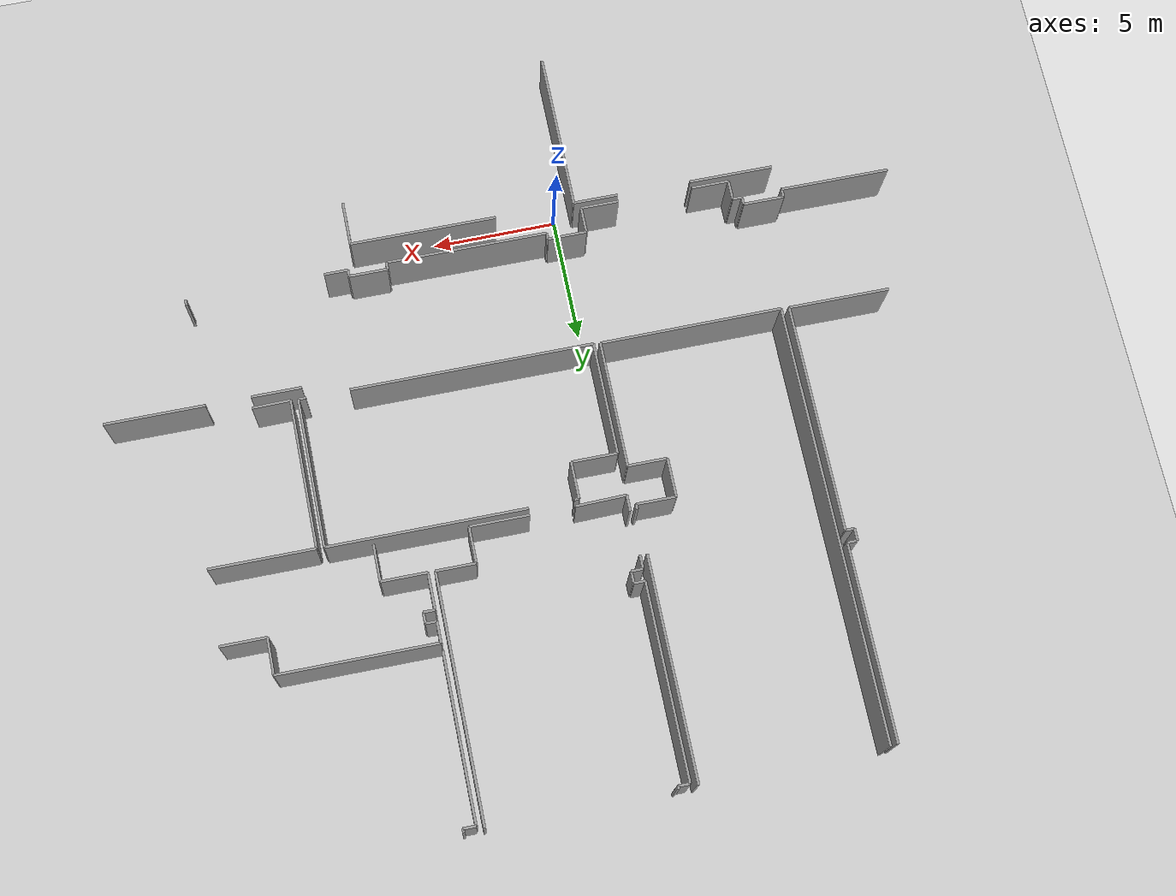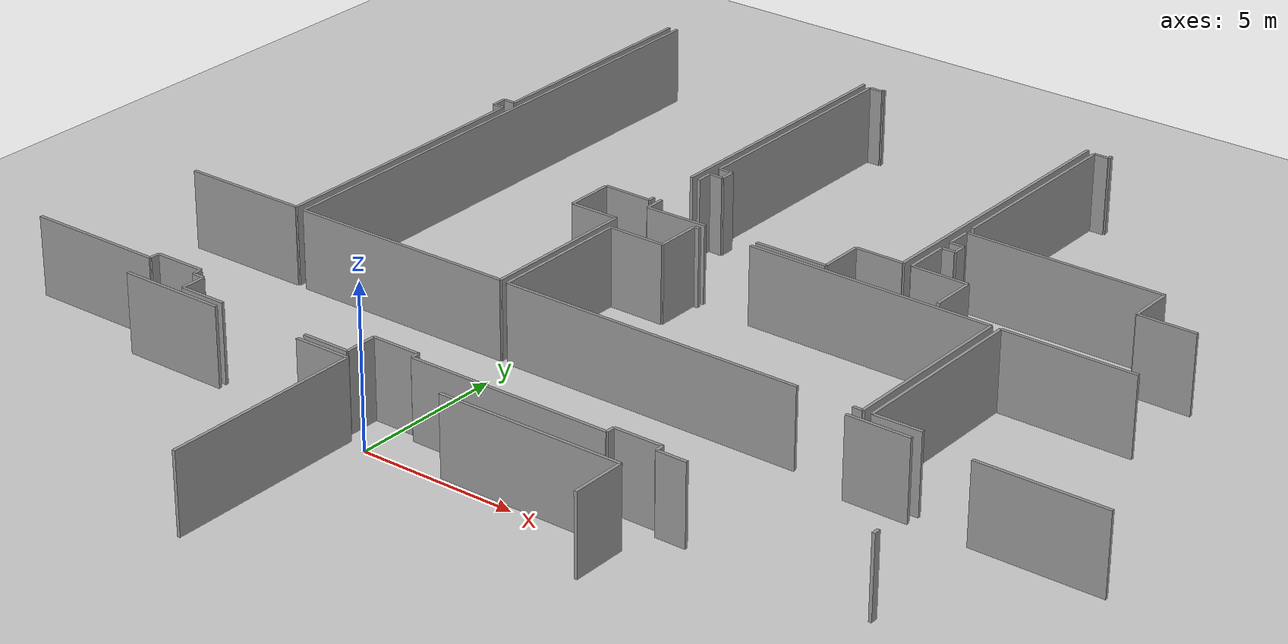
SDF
<sdf version="1.6">
 <world name="default">
  <model name="ground_plane">
   <static>1</static>
   <link name="link">
    <collision name="collision">
     <geometry><plane><normal>0 0 1</normal><size>100 100</size></plane></geometry>
     <surface><friction><ode><mu>100</mu><mu2>50</mu2></ode></friction></surface>
    </collision>
    <visual name="visual">
     <cast_shadows>0</cast_shadows>
     <geometry><plane><normal>0 0 1</normal><size>100 100</size></plane></geometry>
     <material>
      <script><uri>file://media/materials/scripts/gazebo.material</uri><name>Gazebo/Grey</name></script>
     </material>
    </visual>
   </link>
  </model>
  <model name="50057022">
   <static>1</static>
   <link name="Wall_30">
    <collision name="Wall_30_Collision">
     <geometry><box><size>7.83178337604 0.1 2.5</size></box></geometry>
     <pose>3.91589168802 0 1.25 0 0 0</pose>
    </collision>
    <visual name="Wall_30_Visual">
     <pose>3.91589168802 0 1.25 0 0 0</pose>
     <geometry><box><size>7.83178337604 0.1 2.5</size></box></geometry>
     <material>
      <script><uri>file://media/materials/scripts/gazebo.material</uri><name>Gazebo/Grey</name></script>
      <ambient>1 1 1 1</ambient>
     </material>
    </visual>
    <pose>48.4105016894 -0.0653947638565 0 0 0 -1.57079632679</pose>
   </link>
   <link name="Wall_31">
    <collision name="Wall_31_Collision">
     <geometry><box><size>0.394016125639 0.1 2.5</size></box></geometry>
     <pose>0.19700806282 0 1.25 0 0 0</pose>
    </collision>
    <visual name="Wall_31_Visual">
     <pose>0.19700806282 0 1.25 0 0 0</pose>
     <geometry><box><size>0.394016125639 0.1 2.5</size></box></geometry>
     <material>
      <script><uri>file://media/materials/scripts/gazebo.material</uri><name>Gazebo/Grey</name></script>
      <ambient>1 1 1 1</ambient>
     </material>
    </visual>
    <pose>48.4105016894 -7.8971781399 0 0 0 3.14159265359</pose>
   </link>
   <link name="Wall_32">
    <collision name="Wall_32_Collision">
     <geometry><box><size>0.48323688873 0.1 2.5</size></box></geometry>
     <pose>0.241618444365 0 1.25 0 0 0</pose>
    </collision>
    <visual name="Wall_32_Visual">
     <pose>0.241618444365 0 1.25 0 0 0</pose>
     <geometry><box><size>0.48323688873 0.1 2.5</size></box></geometry>
     <material>
      <script><uri>file://media/materials/scripts/gazebo.material</uri><name>Gazebo/Grey</name></script>
      <ambient>1 1 1 1</ambient>
     </material>
    </visual>
    <pose>48.0164855637 -7.8971781399 0 0 0 -1.57079632679</pose>
   </link>
   <link name="Wall_33">
    <collision name="Wall_33_Collision">
     <geometry><box><size>0.358403860826 0.1 2.5</size></box></geometry>
     <pose>0.179201930413 0 1.25 0 0 0</pose>
    </collision>
    <visual name="Wall_33_Visual">
     <pose>0.179201930413 0 1.25 0 0 0</pose>
     <geometry><box><size>0.358403860826 0.1 2.5</size></box></geometry>
     <material>
      <script><uri>file://media/materials/scripts/gazebo.material</uri><name>Gazebo/Grey</name></script>
      <ambient>1 1 1 1</ambient>
     </material>
    </visual>
    <pose>48.0164855637 -8.38041502863 0 0 0 0.0</pose>
   </link>
   <link name="Wall_34">
    <collision name="Wall_34_Collision">
     <geometry><box><size>9.22991328857 0.1 2.5</size></box></geometry>
     <pose>4.61495664429 0 1.25 0 0 0</pose>
    </collision>
    <visual name="Wall_34_Visual">
     <pose>4.61495664429 0 1.25 0 0 0</pose>
     <geometry><box><size>9.22991328857 0.1 2.5</size></box></geometry>
     <material>
      <script><uri>file://media/materials/scripts/gazebo.material</uri><name>Gazebo/Grey</name></script>
      <ambient>1 1 1 1</ambient>
     </material>
    </visual>
    <pose>48.3748894246 -8.38041502863 0 0 0 -1.57079632679</pose>
   </link>
   <link name="Wall_35">
    <collision name="Wall_35_Collision">
     <geometry><box><size>4.04649111468 0.1 2.5</size></box></geometry>
     <pose>2.02324555734 0 1.25 0 0 0</pose>
    </collision>
    <visual name="Wall_35_Visual">
     <pose>2.02324555734 0 1.25 0 0 0</pose>
     <geometry><box><size>4.04649111468 0.1 2.5</size></box></geometry>
     <material>
      <script><uri>file://media/materials/scripts/gazebo.material</uri><name>Gazebo/Grey</name></script>
      <ambient>1 1 1 1</ambient>
     </material>
    </visual>
    <pose>48.3748894246 -17.6103283172 0 0 0 3.14159265359</pose>
   </link>
   <link name="Wall_43">
    <collision name="Wall_43_Collision">
     <geometry><box><size>17.6012034664 0.1 2.5</size></box></geometry>
     <pose>8.80060173321 0 1.25 0 0 0</pose>
    </collision>
    <visual name="Wall_43_Visual">
     <pose>8.80060173321 0 1.25 0 0 0</pose>
     <geometry><box><size>17.6012034664 0.1 2.5</size></box></geometry>
     <material>
      <script><uri>file://media/materials/scripts/gazebo.material</uri><name>Gazebo/Grey</name></script>
      <ambient>1 1 1 1</ambient>
     </material>
    </visual>
    <pose>48.6986948929 -17.6303522953 0 0 0 1.57079632679</pose>
   </link>
   <link name="Wall_44">
    <collision name="Wall_44_Collision">
     <geometry><box><size>8.89989785236 0.1 2.5</size></box></geometry>
     <pose>4.44994892618 0 1.25 0 0 0</pose>
    </collision>
    <visual name="Wall_44_Visual">
     <pose>4.44994892618 0 1.25 0 0 0</pose>
     <geometry><box><size>8.89989785236 0.1 2.5</size></box></geometry>
     <material>
      <script><uri>file://media/materials/scripts/gazebo.material</uri><name>Gazebo/Grey</name></script>
      <ambient>1 1 1 1</ambient>
     </material>
    </visual>
    <pose>56.0094746367 -0.0291488288508 0 0 0 -1.57079632679</pose>
   </link>
   <link name="Wall_45">
    <collision name="Wall_45_Collision">
     <geometry><box><size>0.204041801955 0.1 2.5</size></box></geometry>
     <pose>0.102020900978 0 1.25 0 0 0</pose>
    </collision>
    <visual name="Wall_45_Visual">
     <pose>0.102020900978 0 1.25 0 0 0</pose>
     <geometry><box><size>0.204041801955 0.1 2.5</size></box></geometry>
     <material>
      <script><uri>file://media/materials/scripts/gazebo.material</uri><name>Gazebo/Grey</name></script>
      <ambient>1 1 1 1</ambient>
     </material>
    </visual>
    <pose>56.0094746367 -10.7267690171 0 0 0 -1.57079632679</pose>
   </link>
   <link name="Wall_46">
    <collision name="Wall_46_Collision">
     <geometry><box><size>1.57403675794 0.1 2.5</size></box></geometry>
     <pose>0.78701837897 0 1.25 0 0 0</pose>
    </collision>
    <visual name="Wall_46_Visual">
     <pose>0.78701837897 0 1.25 0 0 0</pose>
     <geometry><box><size>1.57403675794 0.1 2.5</size></box></geometry>
     <material>
      <script><uri>file://media/materials/scripts/gazebo.material</uri><name>Gazebo/Grey</name></script>
      <ambient>1 1 1 1</ambient>
     </material>
    </visual>
    <pose>56.0094746367 -10.930810819 0 0 0 3.14159265359</pose>
   </link>
   <link name="Wall_47">
    <collision name="Wall_47_Collision">
     <geometry><box><size>1.55946234352 0.1 2.5</size></box></geometry>
     <pose>0.779731171758 0 1.25 0 0 0</pose>
    </collision>
    <visual name="Wall_47_Visual">
     <pose>0.779731171758 0 1.25 0 0 0</pose>
     <geometry><box><size>1.55946234352 0.1 2.5</size></box></geometry>
     <material>
      <script><uri>file://media/materials/scripts/gazebo.material</uri><name>Gazebo/Grey</name></script>
      <ambient>1 1 1 1</ambient>
     </material>
    </visual>
    <pose>54.4354378788 -10.930810819 0 0 0 -1.57079632679</pose>
   </link>
   <link name="Wall_48">
    <collision name="Wall_48_Collision">
     <geometry><box><size>1.57403675794 0.1 2.5</size></box></geometry>
     <pose>0.78701837897 0 1.25 0 0 0</pose>
    </collision>
    <visual name="Wall_48_Visual">
     <pose>0.78701837897 0 1.25 0 0 0</pose>
     <geometry><box><size>1.57403675794 0.1 2.5</size></box></geometry>
     <material>
      <script><uri>file://media/materials/scripts/gazebo.material</uri><name>Gazebo/Grey</name></script>
      <ambient>1 1 1 1</ambient>
     </material>
    </visual>
    <pose>54.4354378788 -12.4902731625 0 0 0 0.0</pose>
   </link>
   <link name="Wall_49">
    <collision name="Wall_49_Collision">
     <geometry><box><size>5.10738175081 0.1 2.5</size></box></geometry>
     <pose>2.5536908754 0 1.25 0 0 0</pose>
    </collision>
    <visual name="Wall_49_Visual">
     <pose>2.5536908754 0 1.25 0 0 0</pose>
     <geometry><box><size>5.10738175081 0.1 2.5</size></box></geometry>
     <material>
      <script><uri>file://media/materials/scripts/gazebo.material</uri><name>Gazebo/Grey</name></script>
      <ambient>1 1 1 1</ambient>
     </material>
    </visual>
    <pose>56.0094746367 -12.4902731625 0 0 0 -1.57079632679</pose>
   </link>
   <link name="Wall_50">
    <collision name="Wall_50_Collision">
     <geometry><box><size>7.31085286282 0.1 2.5</size></box></geometry>
     <pose>3.65542643141 0 1.25 0 0 0</pose>
    </collision>
    <visual name="Wall_50_Visual">
     <pose>3.65542643141 0 1.25 0 0 0</pose>
     <geometry><box><size>7.31085286282 0.1 2.5</size></box></geometry>
     <material>
      <script><uri>file://media/materials/scripts/gazebo.material</uri><name>Gazebo/Grey</name></script>
      <ambient>1 1 1 1</ambient>
     </material>
    </visual>
    <pose>56.0094746367 -17.5976549134 0 0 0 -3.13712019442</pose>
   </link>
   <link name="Wall_51">
    <collision name="Wall_51_Collision">
     <geometry><box><size>0.641274234717 0.1 2.5</size></box></geometry>
     <pose>0.320637117358 0 1.25 0 0 0</pose>
    </collision>
    <visual name="Wall_51_Visual">
     <pose>0.320637117358 0 1.25 0 0 0</pose>
     <geometry><box><size>0.641274234717 0.1 2.5</size></box></geometry>
     <material>
      <script><uri>file://media/materials/scripts/gazebo.material</uri><name>Gazebo/Grey</name></script>
      <ambient>1 1 1 1</ambient>
     </material>
    </visual>
    <pose>56.2863885108 -11.3534688374 0 0 0 1.57079632679</pose>
   </link>
   <link name="Wall_52">
    <collision name="Wall_52_Collision">
     <geometry><box><size>0.55002572701 0.1 2.5</size></box></geometry>
     <pose>0.275012863505 0 1.25 0 0 0</pose>
    </collision>
    <visual name="Wall_52_Visual">
     <pose>0.275012863505 0 1.25 0 0 0</pose>
     <geometry><box><size>0.55002572701 0.1 2.5</size></box></geometry>
     <material>
      <script><uri>file://media/materials/scripts/gazebo.material</uri><name>Gazebo/Grey</name></script>
      <ambient>1 1 1 1</ambient>
     </material>
    </visual>
    <pose>56.2863885108 -8.94716964872 0 0 0 1.57079632679</pose>
   </link>
   <link name="Wall_53">
    <collision name="Wall_53_Collision">
     <geometry><box><size>0.463086176611 0.1 2.5</size></box></geometry>
     <pose>0.231543088306 0 1.25 0 0 0</pose>
    </collision>
    <visual name="Wall_53_Visual">
     <pose>0.231543088306 0 1.25 0 0 0</pose>
     <geometry><box><size>0.463086176611 0.1 2.5</size></box></geometry>
     <material>
      <script><uri>file://media/materials/scripts/gazebo.material</uri><name>Gazebo/Grey</name></script>
      <ambient>1 1 1 1</ambient>
     </material>
    </visual>
    <pose>56.2863885108 -8.39714392171 0 0 0 0.0</pose>
   </link>
   <link name="Wall_54">
    <collision name="Wall_54_Collision">
     <geometry><box><size>0.474999176229 0.1 2.5</size></box></geometry>
     <pose>0.237499588114 0 1.25 0 0 0</pose>
    </collision>
    <visual name="Wall_54_Visual">
     <pose>0.237499588114 0 1.25 0 0 0</pose>
     <geometry><box><size>0.474999176229 0.1 2.5</size></box></geometry>
     <material>
      <script><uri>file://media/materials/scripts/gazebo.material</uri><name>Gazebo/Grey</name></script>
      <ambient>1 1 1 1</ambient>
     </material>
    </visual>
    <pose>56.7494746874 -8.39714392171 0 0 0 1.57079632679</pose>
   </link>
   <link name="Wall_55">
    <collision name="Wall_55_Collision">
     <geometry><box><size>0.450032570648 0.1 2.5</size></box></geometry>
     <pose>0.225016285324 0 1.25 0 0 0</pose>
    </collision>
    <visual name="Wall_55_Visual">
     <pose>0.225016285324 0 1.25 0 0 0</pose>
     <geometry><box><size>0.450032570648 0.1 2.5</size></box></geometry>
     <material>
      <script><uri>file://media/materials/scripts/gazebo.material</uri><name>Gazebo/Grey</name></script>
      <ambient>1 1 1 1</ambient>
     </material>
    </visual>
    <pose>56.7494746874 -7.92214474548 0 0 0 3.14159265359</pose>
   </link>
   <link name="Wall_56">
    <collision name="Wall_56_Collision">
     <geometry><box><size>7.78299077123 0.1 2.5</size></box></geometry>
     <pose>3.89149538561 0 1.25 0 0 0</pose>
    </collision>
    <visual name="Wall_56_Visual">
     <pose>3.89149538561 0 1.25 0 0 0</pose>
     <geometry><box><size>7.78299077123 0.1 2.5</size></box></geometry>
     <material>
      <script><uri>file://media/materials/scripts/gazebo.material</uri><name>Gazebo/Grey</name></script>
      <ambient>1 1 1 1</ambient>
     </material>
    </visual>
    <pose>56.2994421168 -7.92214474548 0 0 0 1.57079632679</pose>
   </link>
   <link name="Wall_57">
    <collision name="Wall_57_Collision">
     <geometry><box><size>0.462959442573 0.1 2.5</size></box></geometry>
     <pose>0.231479721287 0 1.25 0 0 0</pose>
    </collision>
    <visual name="Wall_57_Visual">
     <pose>0.231479721287 0 1.25 0 0 0</pose>
     <geometry><box><size>0.462959442573 0.1 2.5</size></box></geometry>
     <material>
      <script><uri>file://media/materials/scripts/gazebo.material</uri><name>Gazebo/Grey</name></script>
      <ambient>1 1 1 1</ambient>
     </material>
    </visual>
    <pose>56.2994421168 -0.139153974253 0 0 0 0.0</pose>
   </link>
   <link name="Wall_58">
    <collision name="Wall_58_Collision">
     <geometry><box><size>0.114947772903 0.1 2.5</size></box></geometry>
     <pose>0.0574738864514 0 1.25 0 0 0</pose>
    </collision>
    <visual name="Wall_58_Visual">
     <pose>0.0574738864514 0 1.25 0 0 0</pose>
     <geometry><box><size>0.114947772903 0.1 2.5</size></box></geometry>
     <material>
      <script><uri>file://media/materials/scripts/gazebo.material</uri><name>Gazebo/Grey</name></script>
      <ambient>1 1 1 1</ambient>
     </material>
    </visual>
    <pose>56.7624015593 -0.139153974253 0 0 0 1.57079632679</pose>
   </link>
   <link name="Wall_59">
    <collision name="Wall_59_Collision">
     <geometry><box><size>9.81618495059 0.1 2.5</size></box></geometry>
     <pose>4.90809247529 0 1.25 0 0 0</pose>
    </collision>
    <visual name="Wall_59_Visual">
     <pose>4.90809247529 0 1.25 0 0 0</pose>
     <geometry><box><size>9.81618495059 0.1 2.5</size></box></geometry>
     <material>
      <script><uri>file://media/materials/scripts/gazebo.material</uri><name>Gazebo/Grey</name></script>
      <ambient>1 1 1 1</ambient>
     </material>
    </visual>
    <pose>64.0549316016 -0.02420620135 0 0 0 -1.57079632679</pose>
   </link>
   <link name="Wall_60">
    <collision name="Wall_60_Collision">
     <geometry><box><size>1.58202100236 0.1 2.5</size></box></geometry>
     <pose>0.791010501182 0 1.25 0 0 0</pose>
    </collision>
    <visual name="Wall_60_Visual">
     <pose>0.791010501182 0 1.25 0 0 0</pose>
     <geometry><box><size>1.58202100236 0.1 2.5</size></box></geometry>
     <material>
      <script><uri>file://media/materials/scripts/gazebo.material</uri><name>Gazebo/Grey</name></script>
      <ambient>1 1 1 1</ambient>
     </material>
    </visual>
    <pose>64.0549316016 -9.84039115194 0 0 0 3.14159265359</pose>
   </link>
   <link name="Wall_61">
    <collision name="Wall_61_Collision">
     <geometry><box><size>1.46580588908 0.1 2.5</size></box></geometry>
     <pose>0.732902944539 0 1.25 0 0 0</pose>
    </collision>
    <visual name="Wall_61_Visual">
     <pose>0.732902944539 0 1.25 0 0 0</pose>
     <geometry><box><size>1.46580588908 0.1 2.5</size></box></geometry>
     <material>
      <script><uri>file://media/materials/scripts/gazebo.material</uri><name>Gazebo/Grey</name></script>
      <ambient>1 1 1 1</ambient>
     </material>
    </visual>
    <pose>62.4729105993 -9.84039115194 0 0 0 -1.57079632679</pose>
   </link>
   <link name="Wall_62">
    <collision name="Wall_62_Collision">
     <geometry><box><size>2.36941958345 0.1 2.5</size></box></geometry>
     <pose>1.18470979173 0 1.25 0 0 0</pose>
    </collision>
    <visual name="Wall_62_Visual">
     <pose>1.18470979173 0 1.25 0 0 0</pose>
     <geometry><box><size>2.36941958345 0.1 2.5</size></box></geometry>
     <material>
      <script><uri>file://media/materials/scripts/gazebo.material</uri><name>Gazebo/Grey</name></script>
      <ambient>1 1 1 1</ambient>
     </material>
    </visual>
    <pose>62.4729105993 -11.306197041 0 0 0 3.14159265359</pose>
   </link>
   <link name="Wall_63">
    <collision name="Wall_63_Collision">
     <geometry><box><size>2.02196057742 0.1 2.5</size></box></geometry>
     <pose>1.01098028871 0 1.25 0 0 0</pose>
    </collision>
    <visual name="Wall_63_Visual">
     <pose>1.01098028871 0 1.25 0 0 0</pose>
     <geometry><box><size>2.02196057742 0.1 2.5</size></box></geometry>
     <material>
      <script><uri>file://media/materials/scripts/gazebo.material</uri><name>Gazebo/Grey</name></script>
      <ambient>1 1 1 1</ambient>
     </material>
    </visual>
    <pose>58.3077964246 -11.306197041 0 0 0 -3.11821133533</pose>
   </link>
   <link name="Wall_64">
    <collision name="Wall_64_Collision">
     <geometry><box><size>6.61678414912 0.1 2.5</size></box></geometry>
     <pose>3.30839207456 0 1.25 0 0 0</pose>
    </collision>
    <visual name="Wall_64_Visual">
     <pose>3.30839207456 0 1.25 0 0 0</pose>
     <geometry><box><size>6.61678414912 0.1 2.5</size></box></geometry>
     <material>
      <script><uri>file://media/materials/scripts/gazebo.material</uri><name>Gazebo/Grey</name></script>
      <ambient>1 1 1 1</ambient>
     </material>
    </visual>
    <pose>64.346039688 -6.76252829337 0 0 0 1.57079632679</pose>
   </link>
   <link name="Wall_65">
    <collision name="Wall_65_Collision">
     <geometry><box><size>0.495530090463 0.1 2.5</size></box></geometry>
     <pose>0.247765045231 0 1.25 0 0 0</pose>
    </collision>
    <visual name="Wall_65_Visual">
     <pose>0.247765045231 0 1.25 0 0 0</pose>
     <geometry><box><size>0.495530090463 0.1 2.5</size></box></geometry>
     <material>
      <script><uri>file://media/materials/scripts/gazebo.material</uri><name>Gazebo/Grey</name></script>
      <ambient>1 1 1 1</ambient>
     </material>
    </visual>
    <pose>64.346039688 -0.145744144254 0 0 0 0.0</pose>
   </link>
   <link name="Wall_66">
    <collision name="Wall_66_Collision">
     <geometry><box><size>0.145744144254 0.1 2.5</size></box></geometry>
     <pose>0.0728720721269 0 1.25 0 0 0</pose>
    </collision>
    <visual name="Wall_66_Visual">
     <pose>0.0728720721269 0 1.25 0 0 0</pose>
     <geometry><box><size>0.145744144254 0.1 2.5</size></box></geometry>
     <material>
      <script><uri>file://media/materials/scripts/gazebo.material</uri><name>Gazebo/Grey</name></script>
      <ambient>1 1 1 1</ambient>
     </material>
    </visual>
    <pose>64.8415697785 -0.145744144254 0 0 0 1.57079632679</pose>
   </link>
   <link name="Wall_72">
    <collision name="Wall_72_Collision">
     <geometry><box><size>1.48773087773 0.1 2.5</size></box></geometry>
     <pose>0.743865438867 0 1.25 0 0 0</pose>
    </collision>
    <visual name="Wall_72_Visual">
     <pose>0.743865438867 0 1.25 0 0 0</pose>
     <geometry><box><size>1.48773087773 0.1 2.5</size></box></geometry>
     <material>
      <script><uri>file://media/materials/scripts/gazebo.material</uri><name>Gazebo/Grey</name></script>
      <ambient>1 1 1 1</ambient>
     </material>
    </visual>
    <pose>66.1867248629 -11.3281220297 0 0 0 1.57079632679</pose>
   </link>
   <link name="Wall_73">
    <collision name="Wall_73_Collision">
     <geometry><box><size>1.84043170683 0.1 2.5</size></box></geometry>
     <pose>0.920215853414 0 1.25 0 0 0</pose>
    </collision>
    <visual name="Wall_73_Visual">
     <pose>0.920215853414 0 1.25 0 0 0</pose>
     <geometry><box><size>1.84043170683 0.1 2.5</size></box></geometry>
     <material>
      <script><uri>file://media/materials/scripts/gazebo.material</uri><name>Gazebo/Grey</name></script>
      <ambient>1 1 1 1</ambient>
     </material>
    </visual>
    <pose>66.1867248629 -9.84039115194 0 0 0 3.14159265359</pose>
   </link>
   <link name="Wall_74">
    <collision name="Wall_74_Collision">
     <geometry><box><size>1.47670501639 0.1 2.5</size></box></geometry>
     <pose>0.738352508193 0 1.25 0 0 0</pose>
    </collision>
    <visual name="Wall_74_Visual">
     <pose>0.738352508193 0 1.25 0 0 0</pose>
     <geometry><box><size>1.47670501639 0.1 2.5</size></box></geometry>
     <material>
      <script><uri>file://media/materials/scripts/gazebo.material</uri><name>Gazebo/Grey</name></script>
      <ambient>1 1 1 1</ambient>
     </material>
    </visual>
    <pose>64.3462931561 -9.84039115194 0 0 0 1.57079632679</pose>
   </link>
   <link name="Wall_75">
    <collision name="Wall_75_Collision">
     <geometry><box><size>0.451806847187 0.1 2.5</size></box></geometry>
     <pose>0.225903423593 0 1.25 0 0 0</pose>
    </collision>
    <visual name="Wall_75_Visual">
     <pose>0.225903423593 0 1.25 0 0 0</pose>
     <geometry><box><size>0.451806847187 0.1 2.5</size></box></geometry>
     <material>
      <script><uri>file://media/materials/scripts/gazebo.material</uri><name>Gazebo/Grey</name></script>
      <ambient>1 1 1 1</ambient>
     </material>
    </visual>
    <pose>64.3462931561 -8.36368613555 0 0 0 0.0</pose>
   </link>
   <link name="Wall_76">
    <collision name="Wall_76_Collision">
     <geometry><box><size>0.440780985839 0.1 2.5</size></box></geometry>
     <pose>0.220390492919 0 1.25 0 0 0</pose>
    </collision>
    <visual name="Wall_76_Visual">
     <pose>0.220390492919 0 1.25 0 0 0</pose>
     <geometry><box><size>0.440780985839 0.1 2.5</size></box></geometry>
     <material>
      <script><uri>file://media/materials/scripts/gazebo.material</uri><name>Gazebo/Grey</name></script>
      <ambient>1 1 1 1</ambient>
     </material>
    </visual>
    <pose>64.7981000033 -8.36368613555 0 0 0 1.57079632679</pose>
   </link>
   <link name="Wall_77">
    <collision name="Wall_77_Collision">
     <geometry><box><size>0.440780985839 0.1 2.5</size></box></geometry>
     <pose>0.220390492919 0 1.25 0 0 0</pose>
    </collision>
    <visual name="Wall_77_Visual">
     <pose>0.220390492919 0 1.25 0 0 0</pose>
     <geometry><box><size>0.440780985839 0.1 2.5</size></box></geometry>
     <material>
      <script><uri>file://media/materials/scripts/gazebo.material</uri><name>Gazebo/Grey</name></script>
      <ambient>1 1 1 1</ambient>
     </material>
    </visual>
    <pose>64.7981000033 -7.92290514971 0 0 0 3.14159265359</pose>
   </link>
   <link name="Wall_78">
    <collision name="Wall_78_Collision">
     <geometry><box><size>0.837585260324 0.1 2.5</size></box></geometry>
     <pose>0.418792630162 0 1.25 0 0 0</pose>
    </collision>
    <visual name="Wall_78_Visual">
     <pose>0.418792630162 0 1.25 0 0 0</pose>
     <geometry><box><size>0.837585260324 0.1 2.5</size></box></geometry>
     <material>
      <script><uri>file://media/materials/scripts/gazebo.material</uri><name>Gazebo/Grey</name></script>
      <ambient>1 1 1 1</ambient>
     </material>
    </visual>
    <pose>64.3573190175 -7.92290514971 0 0 0 1.57079632679</pose>
   </link>
   <link name="Wall_79">
    <collision name="Wall_79_Collision">
     <geometry><box><size>6.38080536947 0.1 2.5</size></box></geometry>
     <pose>3.19040268473 0 1.25 0 0 0</pose>
    </collision>
    <visual name="Wall_79_Visual">
     <pose>3.19040268473 0 1.25 0 0 0</pose>
     <geometry><box><size>6.38080536947 0.1 2.5</size></box></geometry>
     <material>
      <script><uri>file://media/materials/scripts/gazebo.material</uri><name>Gazebo/Grey</name></script>
      <ambient>1 1 1 1</ambient>
     </material>
    </visual>
    <pose>64.3573190175 -7.08531988939 0 0 0 0.0</pose>
   </link>
   <link name="Wall_80">
    <collision name="Wall_80_Collision">
     <geometry><box><size>1.46567915504 0.1 2.5</size></box></geometry>
     <pose>0.732839577519 0 1.25 0 0 0</pose>
    </collision>
    <visual name="Wall_80_Visual">
     <pose>0.732839577519 0 1.25 0 0 0</pose>
     <geometry><box><size>1.46567915504 0.1 2.5</size></box></geometry>
     <material>
      <script><uri>file://media/materials/scripts/gazebo.material</uri><name>Gazebo/Grey</name></script>
      <ambient>1 1 1 1</ambient>
     </material>
    </visual>
    <pose>70.7381243869 -7.08531988939 0 0 0 -1.57079632679</pose>
   </link>
   <link name="Wall_81">
    <collision name="Wall_81_Collision">
     <geometry><box><size>1.85145756818 0.1 2.5</size></box></geometry>
     <pose>0.925728784088 0 1.25 0 0 0</pose>
    </collision>
    <visual name="Wall_81_Visual">
     <pose>0.925728784088 0 1.25 0 0 0</pose>
     <geometry><box><size>1.85145756818 0.1 2.5</size></box></geometry>
     <material>
      <script><uri>file://media/materials/scripts/gazebo.material</uri><name>Gazebo/Grey</name></script>
      <ambient>1 1 1 1</ambient>
     </material>
    </visual>
    <pose>70.7381243869 -8.55099904443 0 0 0 0.0</pose>
   </link>
   <link name="Wall_162">
    <collision name="Wall_162_Collision">
     <geometry><box><size>6.04496016749 0.1 2.5</size></box></geometry>
     <pose>3.02248008375 0 1.25 0 0 0</pose>
    </collision>
    <visual name="Wall_162_Visual">
     <pose>3.02248008375 0 1.25 0 0 0</pose>
     <geometry><box><size>6.04496016749 0.1 2.5</size></box></geometry>
     <material>
      <script><uri>file://media/materials/scripts/gazebo.material</uri><name>Gazebo/Grey</name></script>
      <ambient>1 1 1 1</ambient>
     </material>
    </visual>
    <pose>68.3444986021 -17.623001721 0 0 0 1.57079632679</pose>
   </link>
   <link name="Wall_163">
    <collision name="Wall_163_Collision">
     <geometry><box><size>4.22151082182 0.1 2.5</size></box></geometry>
     <pose>2.11075541091 0 1.25 0 0 0</pose>
    </collision>
    <visual name="Wall_163_Visual">
     <pose>2.11075541091 0 1.25 0 0 0</pose>
     <geometry><box><size>4.22151082182 0.1 2.5</size></box></geometry>
     <material>
      <script><uri>file://media/materials/scripts/gazebo.material</uri><name>Gazebo/Grey</name></script>
      <ambient>1 1 1 1</ambient>
     </material>
    </visual>
    <pose>68.3444986021 -11.5780415536 0 0 0 0.0</pose>
   </link>
   <link name="Wall_166">
    <collision name="Wall_166_Collision">
     <geometry><box><size>1.53419819601 0.1 2.5</size></box></geometry>
     <pose>0.767099098006 0 1.25 0 0 0</pose>
    </collision>
    <visual name="Wall_166_Visual">
     <pose>0.767099098006 0 1.25 0 0 0</pose>
     <geometry><box><size>1.53419819601 0.1 2.5</size></box></geometry>
     <material>
      <script><uri>file://media/materials/scripts/gazebo.material</uri><name>Gazebo/Grey</name></script>
      <ambient>1 1 1 1</ambient>
     </material>
    </visual>
    <pose>69.8784874039 -17.5976549134 0 0 0 -3.1250706938</pose>
   </link>
   <link name="Wall_167">
    <collision name="Wall_167_Collision">
     <geometry><box><size>4.56242538533 0.1 2.5</size></box></geometry>
     <pose>2.28121269267 0 1.25 0 0 0</pose>
    </collision>
    <visual name="Wall_167_Visual">
     <pose>2.28121269267 0 1.25 0 0 0</pose>
     <geometry><box><size>4.56242538533 0.1 2.5</size></box></geometry>
     <material>
      <script><uri>file://media/materials/scripts/gazebo.material</uri><name>Gazebo/Grey</name></script>
      <ambient>1 1 1 1</ambient>
     </material>
    </visual>
    <pose>56.2794181387 -17.623001721 0 0 0 1.57079632679</pose>
   </link>
   <link name="Wall_168">
    <collision name="Wall_168_Collision">
     <geometry><box><size>1.83764355798 0.1 2.5</size></box></geometry>
     <pose>0.918821778991 0 1.25 0 0 0</pose>
    </collision>
    <visual name="Wall_168_Visual">
     <pose>0.918821778991 0 1.25 0 0 0</pose>
     <geometry><box><size>1.83764355798 0.1 2.5</size></box></geometry>
     <material>
      <script><uri>file://media/materials/scripts/gazebo.material</uri><name>Gazebo/Grey</name></script>
      <ambient>1 1 1 1</ambient>
     </material>
    </visual>
    <pose>56.2794181387 -13.0605763357 0 0 0 0.0</pose>
   </link>
   <link name="Wall_169">
    <collision name="Wall_169_Collision">
     <geometry><box><size>1.49001209043 0.1 2.5</size></box></geometry>
     <pose>0.745006045214 0 1.25 0 0 0</pose>
    </collision>
    <visual name="Wall_169_Visual">
     <pose>0.745006045214 0 1.25 0 0 0</pose>
     <geometry><box><size>1.49001209043 0.1 2.5</size></box></geometry>
     <material>
      <script><uri>file://media/materials/scripts/gazebo.material</uri><name>Gazebo/Grey</name></script>
      <ambient>1 1 1 1</ambient>
     </material>
    </visual>
    <pose>58.1170616967 -13.0605763357 0 0 0 1.57079632679</pose>
   </link>
   <link name="Wall_170">
    <collision name="Wall_170_Collision">
     <geometry><box><size>0.190101057722 0.1 2.5</size></box></geometry>
     <pose>0.0950505288611 0 1.25 0 0 0</pose>
    </collision>
    <visual name="Wall_170_Visual">
     <pose>0.0950505288611 0 1.25 0 0 0</pose>
     <geometry><box><size>0.190101057722 0.1 2.5</size></box></geometry>
     <material>
      <script><uri>file://media/materials/scripts/gazebo.material</uri><name>Gazebo/Grey</name></script>
      <ambient>1 1 1 1</ambient>
     </material>
    </visual>
    <pose>58.1170616967 -11.5705642453 0 0 0 0.0</pose>
   </link>
   <link name="Wall_171">
    <collision name="Wall_171_Collision">
     <geometry><box><size>7.96130556337 0.1 2.5</size></box></geometry>
     <pose>3.98065278169 0 1.25 0 0 0</pose>
    </collision>
    <visual name="Wall_171_Visual">
     <pose>3.98065278169 0 1.25 0 0 0</pose>
     <geometry><box><size>7.96130556337 0.1 2.5</size></box></geometry>
     <material>
      <script><uri>file://media/materials/scripts/gazebo.material</uri><name>Gazebo/Grey</name></script>
      <ambient>1 1 1 1</ambient>
     </material>
    </visual>
    <pose>60.0866353887 -11.5705642453 0 0 0 0.0</pose>
   </link>
   <link name="Wall_172">
    <collision name="Wall_172_Collision">
     <geometry><box><size>6.03532838057 0.1 2.5</size></box></geometry>
     <pose>3.01766419028 0 1.25 0 0 0</pose>
    </collision>
    <visual name="Wall_172_Visual">
     <pose>3.01766419028 0 1.25 0 0 0</pose>
     <geometry><box><size>6.03532838057 0.1 2.5</size></box></geometry>
     <material>
      <script><uri>file://media/materials/scripts/gazebo.material</uri><name>Gazebo/Grey</name></script>
      <ambient>1 1 1 1</ambient>
     </material>
    </visual>
    <pose>68.0479409521 -11.5705642453 0 0 0 -1.57079632679</pose>
   </link>
   <link name="Wall_173">
    <collision name="Wall_173_Collision">
     <geometry><box><size>0.306062702933 0.1 2.5</size></box></geometry>
     <pose>0.153031351466 0 1.25 0 0 0</pose>
    </collision>
    <visual name="Wall_173_Visual">
     <pose>0.153031351466 0 1.25 0 0 0</pose>
     <geometry><box><size>0.306062702933 0.1 2.5</size></box></geometry>
     <material>
      <script><uri>file://media/materials/scripts/gazebo.material</uri><name>Gazebo/Grey</name></script>
      <ambient>1 1 1 1</ambient>
     </material>
    </visual>
    <pose>68.0479409521 -17.6058926259 0 0 0 3.14159265359</pose>
   </link>
   <link name="Wall_174">
    <collision name="Wall_174_Collision">
     <geometry><box><size>9.72089600994 0.1 2.5</size></box></geometry>
     <pose>4.86044800497 0 1.25 0 0 0</pose>
    </collision>
    <visual name="Wall_174_Visual">
     <pose>4.86044800497 0 1.25 0 0 0</pose>
     <geometry><box><size>9.72089600994 0.1 2.5</size></box></geometry>
     <material>
      <script><uri>file://media/materials/scripts/gazebo.material</uri><name>Gazebo/Grey</name></script>
      <ambient>1 1 1 1</ambient>
     </material>
    </visual>
    <pose>66.0002990923 -17.6058926259 0 0 0 -3.13983261995</pose>
   </link>
   <link name="Wall_432">
    <collision name="Wall_432_Collision">
     <geometry><box><size>3.38126414669 0.1 2.5</size></box></geometry>
     <pose>1.69063207334 0 1.25 0 0 0</pose>
    </collision>
    <visual name="Wall_432_Visual">
     <pose>1.69063207334 0 1.25 0 0 0</pose>
     <geometry><box><size>3.38126414669 0.1 2.5</size></box></geometry>
     <material>
      <script><uri>file://media/materials/scripts/gazebo.material</uri><name>Gazebo/Grey</name></script>
      <ambient>1 1 1 1</ambient>
     </material>
    </visual>
    <pose>47.6729095854 -23.6251257835 0 0 0 0.0</pose>
   </link>
   <link name="Wall_433">
    <collision name="Wall_433_Collision">
     <geometry><box><size>1.79341337855 0.1 2.5</size></box></geometry>
     <pose>0.896706689276 0 1.25 0 0 0</pose>
    </collision>
    <visual name="Wall_433_Visual">
     <pose>0.896706689276 0 1.25 0 0 0</pose>
     <geometry><box><size>1.79341337855 0.1 2.5</size></box></geometry>
     <material>
      <script><uri>file://media/materials/scripts/gazebo.material</uri><name>Gazebo/Grey</name></script>
      <ambient>1 1 1 1</ambient>
     </material>
    </visual>
    <pose>54.0360989235 -23.6251257835 0 0 0 0.0</pose>
   </link>
   <link name="Wall_434">
    <collision name="Wall_434_Collision">
     <geometry><box><size>6.41274234717 0.1 2.5</size></box></geometry>
     <pose>3.20637117358 0 1.25 0 0 0</pose>
    </collision>
    <visual name="Wall_434_Visual">
     <pose>3.20637117358 0 1.25 0 0 0</pose>
     <geometry><box><size>6.41274234717 0.1 2.5</size></box></geometry>
     <material>
      <script><uri>file://media/materials/scripts/gazebo.material</uri><name>Gazebo/Grey</name></script>
      <ambient>1 1 1 1</ambient>
     </material>
    </visual>
    <pose>55.8295123021 -23.6251257835 0 0 0 -1.57079632679</pose>
   </link>
   <link name="Wall_501">
    <collision name="Wall_501_Collision">
     <geometry><box><size>5.90580619324 0.1 2.5</size></box></geometry>
     <pose>2.95290309662 0 1.25 0 0 0</pose>
    </collision>
    <visual name="Wall_501_Visual">
     <pose>2.95290309662 0 1.25 0 0 0</pose>
     <geometry><box><size>5.90580619324 0.1 2.5</size></box></geometry>
     <material>
      <script><uri>file://media/materials/scripts/gazebo.material</uri><name>Gazebo/Grey</name></script>
      <ambient>1 1 1 1</ambient>
     </material>
    </visual>
    <pose>59.0295467737 -23.6175217412 0 0 0 0.0</pose>
   </link>
   <link name="Wall_502">
    <collision name="Wall_502_Collision">
     <geometry><box><size>1.78694994259 0.1 2.5</size></box></geometry>
     <pose>0.893474971295 0 1.25 0 0 0</pose>
    </collision>
    <visual name="Wall_502_Visual">
     <pose>0.893474971295 0 1.25 0 0 0</pose>
     <geometry><box><size>1.78694994259 0.1 2.5</size></box></geometry>
     <material>
      <script><uri>file://media/materials/scripts/gazebo.material</uri><name>Gazebo/Grey</name></script>
      <ambient>1 1 1 1</ambient>
     </material>
    </visual>
    <pose>64.935352967 -23.6175217412 0 0 0 -1.57079632679</pose>
   </link>
   <link name="Wall_605">
    <collision name="Wall_605_Collision">
     <geometry><box><size>2.01215632897 0.1 2.5</size></box></geometry>
     <pose>1.00607816449 0 1.25 0 0 0</pose>
    </collision>
    <visual name="Wall_605_Visual">
     <pose>1.00607816449 0 1.25 0 0 0</pose>
     <geometry><box><size>2.01215632897 0.1 2.5</size></box></geometry>
     <material>
      <script><uri>file://media/materials/scripts/gazebo.material</uri><name>Gazebo/Grey</name></script>
      <ambient>1 1 1 1</ambient>
     </material>
    </visual>
    <pose>67.8278039272 -18.054404388 0 0 0 0.0</pose>
   </link>
   <link name="Wall_606">
    <collision name="Wall_606_Collision">
     <geometry><box><size>4.0225383814 0.1 2.5</size></box></geometry>
     <pose>2.0112691907 0 1.25 0 0 0</pose>
    </collision>
    <visual name="Wall_606_Visual">
     <pose>2.0112691907 0 1.25 0 0 0</pose>
     <geometry><box><size>4.0225383814 0.1 2.5</size></box></geometry>
     <material>
      <script><uri>file://media/materials/scripts/gazebo.material</uri><name>Gazebo/Grey</name></script>
      <ambient>1 1 1 1</ambient>
     </material>
    </visual>
    <pose>71.6346409751 -18.054404388 0 0 0 0.0</pose>
   </link>
   <link name="Wall_627">
    <collision name="Wall_627_Collision">
     <geometry><box><size>0.220390492919 0.1 2.5</size></box></geometry>
     <pose>0.11019524646 0 1.25 0 0 0</pose>
    </collision>
    <visual name="Wall_627_Visual">
     <pose>0.11019524646 0 1.25 0 0 0</pose>
     <geometry><box><size>0.220390492919 0.1 2.5</size></box></geometry>
     <material>
      <script><uri>file://media/materials/scripts/gazebo.material</uri><name>Gazebo/Grey</name></script>
      <ambient>1 1 1 1</ambient>
     </material>
    </visual>
    <pose>71.7409708334 -22.3154562299 0 0 0 -1.57079632679</pose>
   </link>
   <link name="Wall_629">
    <collision name="Wall_629_Collision">
     <geometry><box><size>0.961911352075 0.1 2.5</size></box></geometry>
     <pose>0.480955676037 0 1.25 0 0 0</pose>
    </collision>
    <visual name="Wall_629_Visual">
     <pose>0.480955676037 0 1.25 0 0 0</pose>
     <geometry><box><size>0.961911352075 0.1 2.5</size></box></geometry>
     <material>
      <script><uri>file://media/materials/scripts/gazebo.material</uri><name>Gazebo/Grey</name></script>
      <ambient>1 1 1 1</ambient>
     </material>
    </visual>
    <pose>66.1824159056 -22.5358467228 0 0 0 3.14159265359</pose>
   </link>
   <link name="Wall_630">
    <collision name="Wall_630_Collision">
     <geometry><box><size>0.266141480811 0.1 2.5</size></box></geometry>
     <pose>0.133070740406 0 1.25 0 0 0</pose>
    </collision>
    <visual name="Wall_630_Visual">
     <pose>0.133070740406 0 1.25 0 0 0</pose>
     <geometry><box><size>0.266141480811 0.1 2.5</size></box></geometry>
     <material>
      <script><uri>file://media/materials/scripts/gazebo.material</uri><name>Gazebo/Grey</name></script>
      <ambient>1 1 1 1</ambient>
     </material>
    </visual>
    <pose>65.2205045536 -22.5358467228 0 0 0 1.57079632679</pose>
   </link>
   <link name="Wall_631">
    <collision name="Wall_631_Collision">
     <geometry><box><size>1.55946234352 0.1 2.5</size></box></geometry>
     <pose>0.779731171758 0 1.25 0 0 0</pose>
    </collision>
    <visual name="Wall_631_Visual">
     <pose>0.779731171758 0 1.25 0 0 0</pose>
     <geometry><box><size>1.55946234352 0.1 2.5</size></box></geometry>
     <material>
      <script><uri>file://media/materials/scripts/gazebo.material</uri><name>Gazebo/Grey</name></script>
      <ambient>1 1 1 1</ambient>
     </material>
    </visual>
    <pose>65.2205045536 -22.269705242 0 0 0 3.14159265359</pose>
   </link>
   <link name="Wall_632">
    <collision name="Wall_632_Collision">
     <geometry><box><size>0.291488288508 0.1 2.5</size></box></geometry>
     <pose>0.145744144254 0 1.25 0 0 0</pose>
    </collision>
    <visual name="Wall_632_Visual">
     <pose>0.145744144254 0 1.25 0 0 0</pose>
     <geometry><box><size>0.291488288508 0.1 2.5</size></box></geometry>
     <material>
      <script><uri>file://media/materials/scripts/gazebo.material</uri><name>Gazebo/Grey</name></script>
      <ambient>1 1 1 1</ambient>
     </material>
    </visual>
    <pose>63.66104221 -22.269705242 0 0 0 -1.57079632679</pose>
   </link>
   <link name="Wall_633">
    <collision name="Wall_633_Collision">
     <geometry><box><size>6.51096122699 0.1 2.5</size></box></geometry>
     <pose>3.25548061349 0 1.25 0 0 0</pose>
    </collision>
    <visual name="Wall_633_Visual">
     <pose>3.25548061349 0 1.25 0 0 0</pose>
     <geometry><box><size>6.51096122699 0.1 2.5</size></box></geometry>
     <material>
      <script><uri>file://media/materials/scripts/gazebo.material</uri><name>Gazebo/Grey</name></script>
      <ambient>1 1 1 1</ambient>
     </material>
    </visual>
    <pose>63.66104221 -22.5611935305 0 0 0 3.14159265359</pose>
   </link>
   <link name="Wall_634">
    <collision name="Wall_634_Collision">
     <geometry><box><size>0.256763161964 0.1 2.5</size></box></geometry>
     <pose>0.128381580982 0 1.25 0 0 0</pose>
    </collision>
    <visual name="Wall_634_Visual">
     <pose>0.128381580982 0 1.25 0 0 0</pose>
     <geometry><box><size>0.256763161964 0.1 2.5</size></box></geometry>
     <material>
      <script><uri>file://media/materials/scripts/gazebo.material</uri><name>Gazebo/Grey</name></script>
      <ambient>1 1 1 1</ambient>
     </material>
    </visual>
    <pose>57.1500809831 -22.5611935305 0 0 0 1.57079632679</pose>
   </link>
   <link name="Wall_635">
    <collision name="Wall_635_Collision">
     <geometry><box><size>1.56491190717 0.1 2.5</size></box></geometry>
     <pose>0.782455953585 0 1.25 0 0 0</pose>
    </collision>
    <visual name="Wall_635_Visual">
     <pose>0.782455953585 0 1.25 0 0 0</pose>
     <geometry><box><size>1.56491190717 0.1 2.5</size></box></geometry>
     <material>
      <script><uri>file://media/materials/scripts/gazebo.material</uri><name>Gazebo/Grey</name></script>
      <ambient>1 1 1 1</ambient>
     </material>
    </visual>
    <pose>57.1500809831 -22.3044303685 0 0 0 3.14159265359</pose>
   </link>
   <link name="Wall_636">
    <collision name="Wall_636_Collision">
     <geometry><box><size>1.0469498919 0.1 2.5</size></box></geometry>
     <pose>0.523474945948 0 1.25 0 0 0</pose>
    </collision>
    <visual name="Wall_636_Visual">
     <pose>0.523474945948 0 1.25 0 0 0</pose>
     <geometry><box><size>1.0469498919 0.1 2.5</size></box></geometry>
     <material>
      <script><uri>file://media/materials/scripts/gazebo.material</uri><name>Gazebo/Grey</name></script>
      <ambient>1 1 1 1</ambient>
     </material>
    </visual>
    <pose>55.5851690759 -22.3044303685 0 0 0 -1.57079632679</pose>
   </link>
   <link name="Wall_637">
    <collision name="Wall_637_Collision">
     <geometry><box><size>1.53183432313 0.1 2.5</size></box></geometry>
     <pose>0.765917161563 0 1.25 0 0 0</pose>
    </collision>
    <visual name="Wall_637_Visual">
     <pose>0.765917161563 0 1.25 0 0 0</pose>
     <geometry><box><size>1.53183432313 0.1 2.5</size></box></geometry>
     <material>
      <script><uri>file://media/materials/scripts/gazebo.material</uri><name>Gazebo/Grey</name></script>
      <ambient>1 1 1 1</ambient>
     </material>
    </visual>
    <pose>55.5851690759 -23.3513802604 0 0 0 3.14159265359</pose>
   </link>
   <link name="Wall_638">
    <collision name="Wall_638_Collision">
     <geometry><box><size>1.51079647274 0.1 2.5</size></box></geometry>
     <pose>0.755398236369 0 1.25 0 0 0</pose>
    </collision>
    <visual name="Wall_638_Visual">
     <pose>0.755398236369 0 1.25 0 0 0</pose>
     <geometry><box><size>1.51079647274 0.1 2.5</size></box></geometry>
     <material>
      <script><uri>file://media/materials/scripts/gazebo.material</uri><name>Gazebo/Grey</name></script>
      <ambient>1 1 1 1</ambient>
     </material>
    </visual>
    <pose>51.0383319773 -23.3513802604 0 0 0 3.14159265359</pose>
   </link>
   <link name="Wall_639">
    <collision name="Wall_639_Collision">
     <geometry><box><size>0.790947134163 0.1 2.5</size></box></geometry>
     <pose>0.395473567082 0 1.25 0 0 0</pose>
    </collision>
    <visual name="Wall_639_Visual">
     <pose>0.395473567082 0 1.25 0 0 0</pose>
     <geometry><box><size>0.790947134163 0.1 2.5</size></box></geometry>
     <material>
      <script><uri>file://media/materials/scripts/gazebo.material</uri><name>Gazebo/Grey</name></script>
      <ambient>1 1 1 1</ambient>
     </material>
    </visual>
    <pose>49.5275355045 -23.3513802604 0 0 0 1.57079632679</pose>
   </link>
   <link name="Wall_640">
    <collision name="Wall_640_Collision">
     <geometry><box><size>0.385524945061 0.1 2.5</size></box></geometry>
     <pose>0.19276247253 0 1.25 0 0 0</pose>
    </collision>
    <visual name="Wall_640_Visual">
     <pose>0.19276247253 0 1.25 0 0 0</pose>
     <geometry><box><size>0.385524945061 0.1 2.5</size></box></geometry>
     <material>
      <script><uri>file://media/materials/scripts/gazebo.material</uri><name>Gazebo/Grey</name></script>
      <ambient>1 1 1 1</ambient>
     </material>
    </visual>
    <pose>49.5275355045 -22.5604331262 0 0 0 3.14159265359</pose>
   </link>
   <link name="Wall_641">
    <collision name="Wall_641_Collision">
     <geometry><box><size>0.301627011586 0.1 2.5</size></box></geometry>
     <pose>0.150813505793 0 1.25 0 0 0</pose>
    </collision>
    <visual name="Wall_641_Visual">
     <pose>0.150813505793 0 1.25 0 0 0</pose>
     <geometry><box><size>0.301627011586 0.1 2.5</size></box></geometry>
     <material>
      <script><uri>file://media/materials/scripts/gazebo.material</uri><name>Gazebo/Grey</name></script>
      <ambient>1 1 1 1</ambient>
     </material>
    </visual>
    <pose>49.1420105595 -22.5604331262 0 0 0 1.57079632679</pose>
   </link>
   <link name="Wall_642">
    <collision name="Wall_642_Collision">
     <geometry><box><size>1.64259987276 0.1 2.5</size></box></geometry>
     <pose>0.82129993638 0 1.25 0 0 0</pose>
    </collision>
    <visual name="Wall_642_Visual">
     <pose>0.82129993638 0 1.25 0 0 0</pose>
     <geometry><box><size>1.64259987276 0.1 2.5</size></box></geometry>
     <material>
      <script><uri>file://media/materials/scripts/gazebo.material</uri><name>Gazebo/Grey</name></script>
      <ambient>1 1 1 1</ambient>
     </material>
    </visual>
    <pose>49.1420105595 -22.2588061147 0 0 0 3.14159265359</pose>
   </link>
   <link name="Wall_643">
    <collision name="Wall_643_Collision">
     <geometry><box><size>0.335211531784 0.1 2.5</size></box></geometry>
     <pose>0.167605765892 0 1.25 0 0 0</pose>
    </collision>
    <visual name="Wall_643_Visual">
     <pose>0.167605765892 0 1.25 0 0 0</pose>
     <geometry><box><size>0.335211531784 0.1 2.5</size></box></geometry>
     <material>
      <script><uri>file://media/materials/scripts/gazebo.material</uri><name>Gazebo/Grey</name></script>
      <ambient>1 1 1 1</ambient>
     </material>
    </visual>
    <pose>47.4994106867 -22.2588061147 0 0 0 -1.57079632679</pose>
   </link>
   <link name="Wall_644">
    <collision name="Wall_644_Collision">
     <geometry><box><size>4.38765914627 0.1 2.5</size></box></geometry>
     <pose>2.19382957313 0 1.25 0 0 0</pose>
    </collision>
    <visual name="Wall_644_Visual">
     <pose>2.19382957313 0 1.25 0 0 0</pose>
     <geometry><box><size>4.38765914627 0.1 2.5</size></box></geometry>
     <material>
      <script><uri>file://media/materials/scripts/gazebo.material</uri><name>Gazebo/Grey</name></script>
      <ambient>1 1 1 1</ambient>
     </material>
    </visual>
    <pose>47.4994106867 -22.5940176464 0 0 0 3.14159265359</pose>
   </link>
   <pose>-56.55 23.8342557037 0 0 0 0</pose>
  </model>
 </world>
</sdf>
